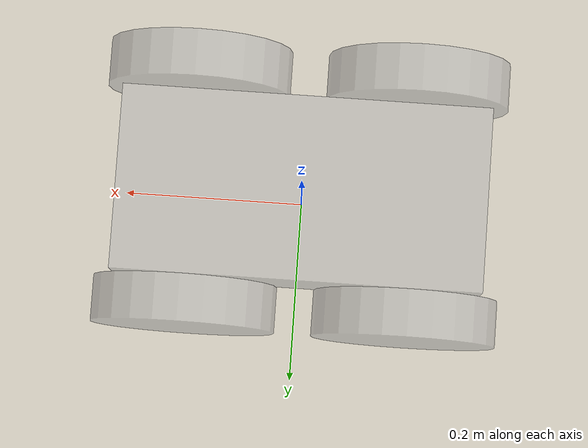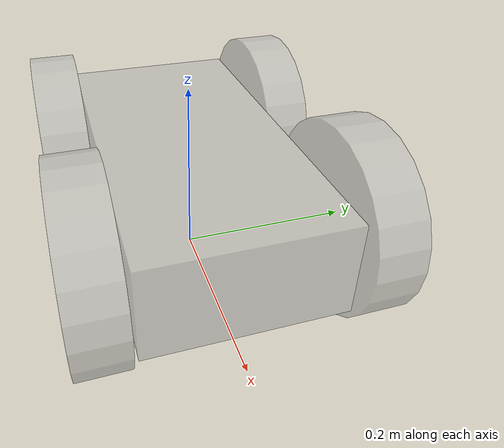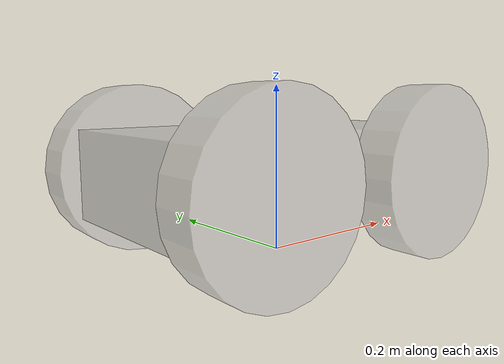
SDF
<?xml version='1.0'?>
<sdf version='1.4'>
  <model name="ssmr">
    <static>false</static>

    <link name='chassis'>
      <pose>0 0 .1 0 0 0</pose>
      <inertial>
        <mass>14.0</mass>
        <inertia>
          <ixx>0.3</ixx>
          <ixy>0.0</ixy>
          <ixz>0.0</ixz>
          <iyy>0.3)</iyy>
          <iyz>0.0</iyz>
          <izz>0.3</izz>
        </inertia>
      </inertial>
      <collision name='collision'>
        <geometry>
          <box>
            <size>.4 .2 .1</size>
          </box>
        </geometry>
      </collision>

      <visual name='visual'>
        <geometry>
          <box>
            <size>.4 .2 .1</size>
          </box>
        </geometry>
        <transparency> 0.5 </transparency>
      </visual>

    </link>

    <link name="left_front_wheel">
      <pose>0.12 0.13 0.1 0 1.5707 1.5707</pose>
      <collision name="collision">
        <geometry>
          <cylinder>
            <radius>.1</radius>
            <length>.05</length>
          </cylinder>
        </geometry>
        <surface>
          <friction>
            <ode>
              <mu>0.1</mu>
              <mu2>0.5</mu2>
            </ode>
          </friction>
        </surface>
      </collision>
      <visual name="visual">
        <geometry>
          <cylinder>
            <radius>.1</radius>
            <length>.05</length>
          </cylinder>
        </geometry>
        <transparency> 0.5 </transparency>
      </visual>
    </link>

    <link name="right_front_wheel">
      <pose>0.12 -0.13 0.1 0 1.5707 1.5707</pose>
      <collision name="collision">
        <geometry>
          <cylinder>
            <radius>.1</radius>
            <length>.05</length>
          </cylinder>
        </geometry>
        <surface>
          <friction>
            <ode>
              <mu>0.1</mu>
              <mu2>0.5</mu2>
            </ode>
          </friction>
        </surface>
      </collision>
      <visual name="visual">
        <geometry>
          <cylinder>
            <radius>.1</radius>
            <length>.05</length>
          </cylinder>
        </geometry>
        <transparency> 0.5 </transparency>
      </visual>
    </link>

    <joint type="revolute" name="left_front_wheel_hinge">
      <pose>0 0 -0.03 0 0 0</pose>
      <child>left_front_wheel</child>
      <parent>chassis</parent>
      <axis>
        <xyz>0 1 0</xyz>
      </axis>
    </joint>

    <joint type="revolute" name="right_front_wheel_hinge">
      <pose>0 0 0.03 0 0 0</pose>
      <child>right_front_wheel</child>
      <parent>chassis</parent>
      <axis>
        <xyz>0 1 0</xyz>
      </axis>
    </joint>

    <link name="left_rear_wheel">
      <pose>-0.12 0.13 0.1 0 1.5707 1.5707</pose>
      <collision name="collision">
        <geometry>
          <cylinder>
            <radius>.1</radius>
            <length>.05</length>
          </cylinder>
        </geometry>
        <surface>
          <friction>
            <ode>
              <mu>0.1</mu>
              <mu2>0.5</mu2>
            </ode>
          </friction>
        </surface>
      </collision>
      <visual name="visual">
        <geometry>
          <cylinder>
            <radius>.1</radius>
            <length>.05</length>
          </cylinder>
        </geometry>
        <transparency> 0.5 </transparency>
      </visual>
    </link>

    <link name="right_rear_wheel">
      <pose>-0.12 -0.13 0.1 0 1.5707 1.5707</pose>
      <collision name="collision">
        <geometry>
          <cylinder>
            <radius>.1</radius>
            <length>.05</length>
          </cylinder>
        </geometry>
        <surface>
          <friction>
            <ode>
              <mu>0.1</mu>
              <mu2>0.5</mu2>
            </ode>
          </friction>
        </surface>
      </collision>
      <visual name="visual">
        <geometry>
          <cylinder>
            <radius>.1</radius>
            <length>.05</length>
          </cylinder>
        </geometry>
        <transparency> 0.5 </transparency>
      </visual>
    </link>

    <joint type="revolute" name="left_rear_wheel_hinge">
      <pose>0 0 -0.03 0 0 0</pose>
      <child>left_rear_wheel</child>
      <parent>chassis</parent>
      <axis>
        <xyz>0 1 0</xyz>
      </axis>
    </joint>

    <joint type="revolute" name="right_rear_wheel_hinge">
      <pose>0 0 0.03 0 0 0</pose>
      <child>right_rear_wheel</child>
      <parent>chassis</parent>
      <axis>
        <xyz>0 1 0</xyz>
      </axis>
    </joint>

  </model>
</sdf>
